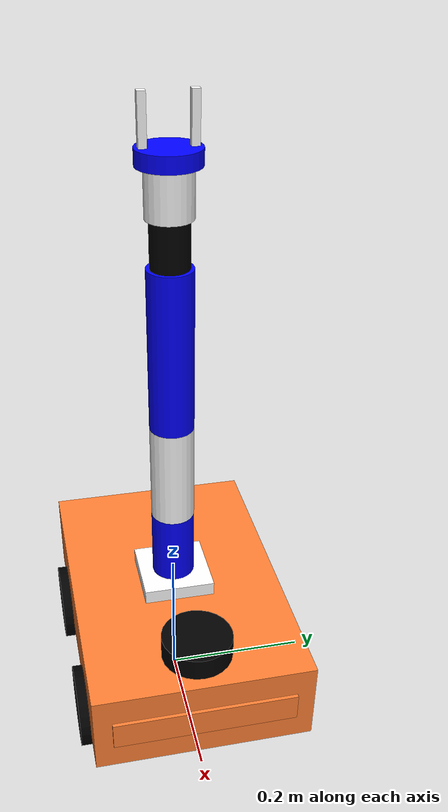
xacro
<robot name="dakebot" xmlns:xacro="http://www.ros.org/wiki/xacro">
  <xacro:include filename="robot_base.urdf.xacro"/>
  <xacro:include filename="robot_move.urdf.xacro"/>

  <xacro:include filename="$(find marm_description)/urdf/arm.xacro"/>

  <joint name="arm2base" type="fixed">
    <origin xyz="0.0 0.0 ${robot_base_link_higth / 2}" rpy="0.0 0.0 0.0"/>
    <parent link="robot_base_link"/>
    <child link="base_link"/>
    <axis xyz="0.0 0.0 0.0"/>
    <limit lower="0.0" upper="0.0" effort="0.0" velocity="0.0"/>
  </joint>

  <gazebo reference="camera">
    <material>Gazebo/Grey</material>
    <sensor type="camera" name="camera1">
      <update_rate>30.0</update_rate>
      <camera name="head">
        <horizontal_fov>1.3962634</horizontal_fov>
        <image>
          <width>800</width>
          <height>800</height>
          <format>R8G8B8</format>
        </image>
        <clip>
          <near>0.02</near>
          <far>300</far>
        </clip>
      </camera>
      <plugin name="camera_controller" filename="libgazebo_ros_camera.so">
        <alwaysOn>true</alwaysOn>
        <updateRate>0.0</updateRate>
        <cameraName>skid_steer_bot/camera1</cameraName>
        <imageTopicName>image_raw</imageTopicName>
        <cameraInfoTopicName>camera_info</cameraInfoTopicName>
        <frameName>camera</frameName>
        <hackBaseline>0.07</hackBaseline>
        <distortionK1>0.0</distortionK1>
        <distortionK2>0.0</distortionK2>
        <distortionK3>0.0</distortionK3>
        <distortionT1>0.0</distortionT1>
        <distortionT2>0.0</distortionT2>
      </plugin>
    </sensor>
  </gazebo>

  <gazebo reference="hokuyo">
    <sensor type="ray" name="head_hokuyo_sensor">
      <pose>0 0 0 0 0 0</pose>
      <visualize>false</visualize>
      <update_rate>40</update_rate>
      <ray>
        <scan>
          <horizontal>
            <samples>720</samples>
            <resolution>1</resolution>
            <min_angle>-1.570796</min_angle>
            <max_angle>1.570796</max_angle>
          </horizontal>
        </scan>
        <range>
          <min>0.10</min>
          <max>30.0</max>
          <resolution>0.01</resolution>
        </range>
        <noise>
          <type>gaussian</type>
          <mean>0.0</mean>
          <stddev>0.01</stddev>
        </noise>
      </ray>
      <plugin name="gazebo_ros_head_hokuyo_controller" filename="libgazebo_ros_laser.so">
        <topicName>/skid_steer_bot/laser/scan</topicName>
        <frameName>hokuyo</frameName>
      </plugin>
    </sensor>
  </gazebo>

</robot>

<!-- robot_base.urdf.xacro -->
<robot name="robot_base" xmlns:xacro="http://www.ros.org/wiki/xacro">

    <xacro:property name="PI" value="3.141"/>

    <material name="black">
        <color rgba="0.0 0.0 0.0 1.0" />
    </material>

    <xacro:property name="base_footprint_radius" value="0.001" />
    <xacro:property name="robot_base_link_length" value="0.448" />
    <xacro:property name="robot_base_link_width" value="0.300" />
    <xacro:property name="robot_base_link_higth" value="0.120" />
    <xacro:property name="robot_base_link_mass" value="5" />
    <xacro:property name="earth_space" value="0.056" />
    <xacro:property name="wheel_radius" value="0.056" />
    <xacro:property name="wheel_length" value="0.028" />
    <xacro:property name="wheel_mass" value="2" />

    <xacro:macro name="Box_inertial_matrix" params="m l w h">
       <inertial>
               <mass value="${m}" />
               <inertia ixx="${m*(h*h + l*l)/12}" ixy = "0" ixz = "0"
                   iyy="${m*(w*w + l*l)/12}" iyz= "0"
                   izz="${m*(w*w + h*h)/12}" />
       </inertial>
    </xacro:macro>

    <xacro:macro name="cylinder_inertial_matrix" params="m r h">
        <inertial>
            <mass value="${m}" />
            <inertia ixx="${m*(3*r*r+h*h)/12}" ixy = "0" ixz = "0"
                iyy="${m*(3*r*r+h*h)/12}" iyz = "0"
                izz="${m*r*r/2}" />
        </inertial>
    </xacro:macro>

    <!--base_footprint_link-->
    <link name="base_footprint">
      <visual>
        <geometry>
          <sphere radius="${base_footprint_radius}" />
        </geometry>
      </visual>
    </link>
    <!--robot_base_link-->
    <link name="robot_base_link">
      <visual>
        <geometry>
          <box size="${robot_base_link_length} ${robot_base_link_width} ${robot_base_link_higth}"/>
        </geometry>
        <origin xyz="0 0 0" rpy="0 0 0" />
        <material name="yellow">
          <color rgba="1.0 0.5 0.2 1.0" />
        </material>
      </visual>

      <collision>
        <geometry>
          <box size="${robot_base_link_length} ${robot_base_link_width} ${robot_base_link_higth}"/>
        </geometry>
        <origin xyz="0 0 0" rpy="0 0 0" />
      </collision>

      <xacro:Box_inertial_matrix m="${robot_base_link_mass}" l="${robot_base_link_length}" w="${robot_base_link_width}" h="${robot_base_link_higth}" />
    </link>

    <gazebo reference="robot_base_link">
        <material>Gazebo/Yellow</material>
    </gazebo>
    <!--base_link joint-->
    <joint name="link2footprint" type="fixed">
      <parent link="base_footprint" />
      <child link="robot_base_link" />
      <origin xyz="0 0 ${earth_space + robot_base_link_higth / 2 }" />
    </joint>

    <!--wheels_link-->
    <xacro:macro name="add_front_wheels" params="name flag">

      <link name="${name}_front_wheel">
        <visual>
          <geometry>
            <cylinder radius="${wheel_radius}" length="${wheel_length}" />
          </geometry>
          <origin xyz="0.0 0.0 0.0" rpy="${PI / 2} 0.0 0.0" />
          <material name="black" />
        </visual>

        <collision>
          <geometry>
            <cylinder radius="${wheel_radius}" length="${wheel_length}" />
          </geometry>
          <surface>
            <friction>
              <fdir1>1 0 0</fdir1>
              <kp>1000000.0</kp> <!-- kp and kd for rubber -->
              <kd>100.0</kd>
              <mu>1</mu>
              <mu2>1</mu2>
              <slip1>0.5</slip1>
              <slip2>0</slip2>
            </friction>
          </surface>
          <origin xyz="0.0 0.0 0.0" rpy="${PI / 2} 0.0 0.0" />
        </collision>

        <xacro:cylinder_inertial_matrix m="${wheel_mass}" r="${wheel_radius}" h="${wheel_length}" />
      </link>

      <gazebo reference="${name}_front_wheel">
        <material>Gazebo/Red</material>
      </gazebo>

      <!--wheels_joint-->
      <joint name="${name}_front_wheel2robot_base_link" type="continuous">
        <parent link="robot_base_link" />
        <child link="${name}_front_wheel" />
        <origin xyz="${robot_base_link_length / 4} ${flag * robot_base_link_width / 2} ${-1 * robot_base_link_higth / 2}" />
        <axis xyz="0 1 0" />
      </joint>
    </xacro:macro>

    <xacro:macro name="add_rear_wheels" params="name flag">

      <link name="${name}_rear_wheel">
        <visual>
          <geometry>
            <cylinder radius="${wheel_radius}" length="${wheel_length}" />
          </geometry>
          <origin xyz="0.0 0.0 0.0" rpy="${PI / 2} 0.0 0.0" />
          <material name="black" />
        </visual>

        <collision>
          <geometry>
            <cylinder radius="${wheel_radius}" length="${wheel_length}" />
          </geometry>
          <surface>
            <friction>
              <fdir1>1 0 0</fdir1>
              <kp>1000000.0</kp> <!-- kp and kd for rubber -->
              <kd>100.0</kd>
              <mu>1</mu>
              <mu2>1</mu2>
              <slip1>0.5</slip1>
              <slip2>0</slip2>
            </friction>
          </surface>
          <origin xyz="0.0 0.0 0.0" rpy="${PI / 2} 0.0 0.0" />
        </collision>

        <xacro:cylinder_inertial_matrix m="${wheel_mass}" r="${wheel_radius}" h="${wheel_length}" />
      </link>

      <gazebo reference="${name}_rear_wheel">
        <material>Gazebo/Red</material>
      </gazebo>

      <!--wheels_joint-->
      <joint name="${name}_rear_wheel2robot_base_link" type="continuous">
        <parent link="robot_base_link" />
        <child link="${name}_rear_wheel" />
        <origin xyz="${-1 * robot_base_link_length / 4} ${flag * robot_base_link_width / 2} ${-1 * robot_base_link_higth / 2}" />
        <axis xyz="0 1 0" />
      </joint>
    </xacro:macro>

    <xacro:add_front_wheels name="left" flag="1" />
    <xacro:add_front_wheels name="right" flag="-1" />
    <xacro:add_rear_wheels name="left" flag="1" />
    <xacro:add_rear_wheels name="right" flag="-1" />

    <link name="camera">
      <visual>
        <origin xyz="0.0 0.0 0.0" rpy="0.0 0.0 0.0"/>
        <geometry>
          <box size="0.01 0.25 0.04"/>
        </geometry>
        <material name="yellow">
          <color rgba="1.0 0.5 0.2 1.0" />
        </material>
      </visual>
      <collision>
        <origin xyz="0.0 0.0 0.0" rpy="0.0 0.0 0.0"/>
        <geometry>
          <box size="0.01 0.25 0.04"/>
        </geometry>
      </collision>
      <xacro:Box_inertial_matrix m="1.0" l="0.01" w="0.25" h="0.04" />
    </link>
    <joint name="camera2base" type="fixed">
      <origin xyz="0.224 0.0 0.0" rpy="0.0 0.0 0.0"/>
      <parent link="robot_base_link"/>
      <child link="camera"/>
      <axis xyz="0.0 0.0 0.0"/>
      <limit lower="0.0" upper="0.0" effort="0.0" velocity="0.0"/>
    </joint>

    <link name="hokuyo">
      <visual>
        <origin xyz="0.0 0.0 0.0" rpy="0.0 0.0 0.0"/>
        <geometry>
          <cylinder radius="0.048" length="0.032"/>
        </geometry>
        <material name="black" />
      </visual>
      <collision>
        <origin xyz="0.0 0.0 0.0" rpy="0.0 0.0 0.0"/>
        <geometry>
          <cylinder radius="0.048" length="0.032"/>
        </geometry>
      </collision>
      <xacro:cylinder_inertial_matrix m="1.0" r="0.048" h="0.032" />
    </link>
    <joint name="hokuyo2base" type="fixed">
      <origin xyz="0.164 0.0 0.08" rpy="0.0 0.0 0.0"/>
      <parent link="robot_base_link"/>
      <child link="hokuyo"/>
      <axis xyz="0.0 0.0 0.0"/>
      <limit lower="0.0" upper="0.0" effort="0.0" velocity="0.0"/>
    </joint>

</robot>

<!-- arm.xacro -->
<robot name="arm" xmlns:xacro="http://ros.org/wiki/xacro">

    <!-- Defining the colors used in this robot -->
    <material name="Black">
        <color rgba="0 0 0 1"/>
    </material>

    <material name="White">
        <color rgba="1 1 1 1"/>
    </material>

    <material name="Blue">
        <color rgba="0 0 1 1"/>
    </material>

    <material name="Red">
        <color rgba="1 0 0 1"/>
    </material>

    <!-- Constants -->
    <xacro:property name="M_PI" value="3.14159"/>

    <!-- link1 properties -->
    <xacro:property name="link1_width" value="0.03" />
    <xacro:property name="link1_len" value="0.10" />

    <!-- link2 properties -->
    <xacro:property name="link2_width" value="0.03" />
    <xacro:property name="link2_len" value="0.14" />

    <!-- link3 properties -->
    <xacro:property name="link3_width" value="0.03" />
    <xacro:property name="link3_len" value="0.22" />

    <!-- link4 properties -->
    <xacro:property name="link4_width" value="0.025" />
    <xacro:property name="link4_len" value="0.06" />

    <!-- link5 properties -->
    <xacro:property name="link5_width" value="0.03" />
    <xacro:property name="link5_len" value="0.06" />

    <!-- link6 properties -->
    <xacro:property name="link6_width" value="0.04" />
    <xacro:property name="link6_len" value="0.02" />

    <!-- Left gripper -->
    <xacro:property name="left_gripper_len" value="0.08" />
    <xacro:property name="left_gripper_width" value="0.01" />
    <xacro:property name="left_gripper_height" value="0.01" />

    <!-- Right gripper -->
    <xacro:property name="right_gripper_len" value="0.08" />
    <xacro:property name="right_gripper_width" value="0.01" />
    <xacro:property name="right_gripper_height" value="0.01" />

    <!-- Gripper frame -->
    <xacro:property name="grasp_frame_radius" value="0.001" />

    <!-- Inertial matrix -->
    <xacro:macro name="inertial_matrix" params="mass">
        <inertial>
            <mass value="${mass}" />
            <inertia ixx="1.0" ixy="0.0" ixz="0.0" iyy="0.5" iyz="0.0" izz="1.0" />
        </inertial>
    </xacro:macro>
    <xacro:macro name="Box_inertial_matrix" params="m l w h">
       <inertial>
               <mass value="${m}" />
               <inertia ixx="${m*(h*h + l*l)/12}" ixy = "0" ixz = "0"
                   iyy="${m*(w*w + l*l)/12}" iyz= "0"
                   izz="${m*(w*w + h*h)/12}" />
       </inertial>
    </xacro:macro>
    <!-- ///////////////////////////////////////   bottom_joint   ////////////////////////////////////////// -->
    <joint name="bottom_joint" type="fixed">
        <origin xyz="0 0 0" rpy="0 0 0" />
        <parent link="base_link"/>
        <child link="bottom_link"/>
    </joint>
    <link name="bottom_link">
        <visual>
              <origin xyz=" 0 0 -0.02"  rpy="0 0 0"/>
                  <geometry>
                       <box size="0.1 0.1 0.01" />
                  </geometry>
              <material name="Black" />
        </visual>
        <collision>
            <origin xyz=" 0 0 -0.02"  rpy="0 0 0"/>
            <geometry>
                <box size="0.1 0.1 0.01" />
            </geometry>
        </collision>
        <xacro:inertial_matrix mass="0.1"/>
    </link>

    <!-- /////////////////////////////////////   BASE LINK    ////////////////////////////////////////////// -->
    <link name="base_link">
        <visual>
            <origin xyz="0 0 0" rpy="0 0 0" />
            <geometry>
                <box size="0.1 0.1 0.04" />
            </geometry>
            <material name="White" />
        </visual>
        <collision>
            <origin xyz="0 0 0" rpy="0 0 0" />
            <geometry>
                <box size="0.1 0.1 0.04" />
            </geometry>
        </collision>
    </link>

    <joint name="joint1" type="revolute">
        <parent link="base_link"/>
        <child link="link1"/>
        <origin xyz="0 0 0.02" rpy="0 ${M_PI/2} 0" />
        <axis xyz="-1 0 0" />
        <limit effort="300" velocity="1" lower="-2.96" upper="2.96"/>
        <dynamics damping="50" friction="1"/>
    </joint>

    <!-- /////////////////////////////////////   LINK1  ////////////////////////////////////////////// -->
    <link name="link1" >
        <visual>
            <origin xyz="-${link1_len/2} 0 0" rpy="0 ${M_PI/2} 0" />
            <geometry>
                <cylinder radius="${link1_width}" length="${link1_len}"/>
            </geometry>
            <material name="Blue" />
        </visual>
        <collision>
            <origin xyz="-${link1_len/2} 0 0" rpy="0 ${M_PI/2} 0" />
            <geometry>
                <cylinder radius="${link1_width}" length="${link1_len}"/>
            </geometry>
        </collision>
        <xacro:inertial_matrix mass="0.1"/>
    </link>

    <joint name="joint2" type="revolute">
        <parent link="link1"/>
        <child link="link2"/>
        <origin xyz="-${link1_len} 0 0.0" rpy="-${M_PI/2} 0 ${M_PI/2}" />
        <axis xyz="1 0 0" />
        <limit effort="300" velocity="1" lower="-2.35" upper="2.35" />
        <dynamics damping="50" friction="1"/>
    </joint>

    <!-- ///////////////////////////////////////   LINK2  ////////////////////////////////////////////// -->
    <link name="link2" >
        <visual>
            <origin xyz="0 0 ${link2_len/2}" rpy="0 0 0" />
            <geometry>
                <cylinder radius="${link2_width}" length="${link2_len}"/>
            </geometry>
            <material name="White" />
        </visual>

        <collision>
            <origin xyz="0 0 ${link2_len/2}" rpy="0 0 0" />
            <geometry>
                <cylinder radius="${link2_width}" length="${link2_len}"/>
            </geometry>
        </collision>
        <xacro:inertial_matrix mass="0.1"/>
    </link>

    <joint name="joint3" type="revolute">
        <parent link="link2"/>
        <child link="link3"/>
        <origin xyz="0 0 ${link2_len}" rpy="0 ${M_PI} 0" />
        <axis xyz="-1 0 0" />
        <limit effort="300" velocity="1" lower="-2.62" upper="2.62" />
        <dynamics damping="50" friction="1"/>
    </joint>

    <!-- /////////////////////////////////   LINK3  ///////////////////////////////////////////////////// -->
    <link name="link3" >
        <visual>
            <origin xyz="0 0 -${link3_len/2}" rpy="0 0 0" />
            <geometry>
                <cylinder radius="${link3_width}" length="${link3_len}"/>
            </geometry>
            <material name="Blue" />
        </visual>
        <collision>
            <origin xyz="0 0 -${link3_len/2}" rpy="0 0 0" />
            <geometry>
                <cylinder radius="${link3_width}" length="${link3_len}"/>
            </geometry>
        </collision>
        <xacro:inertial_matrix mass="0.1"/>
    </link>

    <joint name="joint4" type="revolute">
        <parent link="link3"/>
        <child link="link4"/>
        <origin xyz="0.0 0.0 -${link3_len}" rpy="0 ${M_PI/2} ${M_PI}" />
        <axis xyz="1 0 0" />
        <limit effort="300" velocity="1" lower="-2.62" upper="2.62" />
        <dynamics damping="50" friction="1"/>
    </joint>

    <!-- ///////////////////////////////////   LINK4  //////////////////////////////////////////////// -->
    <link name="link4" >
        <visual>
            <origin xyz="${link4_len/2} 0 0" rpy="0 ${M_PI/2} 0" />
            <geometry>
                <cylinder radius="${link4_width}" length="${link4_len}"/>
            </geometry>
            <material name="Black" />
        </visual>
        <collision>
            <origin xyz="${link4_len/2} 0 0" rpy="0 ${M_PI/2} 0" />
            <geometry>
                <cylinder radius="${link4_width}" length="${link4_len}"/>
            </geometry>
        </collision>
        <xacro:inertial_matrix mass="0.1"/>
    </link>

    <joint name="joint5" type="revolute">
        <parent link="link4"/>
        <child link="link5"/>
        <origin xyz="${link4_len} 0.0 0.0" rpy="0 ${M_PI/2} 0" />
        <axis xyz="1 0 0" />
        <limit effort="300" velocity="1" lower="-2.62" upper="2.62" />
        <dynamics damping="50" friction="1"/>
    </joint>

    <!-- //////////////////////////////////   LINK5  ///////////////////////////////////////////////// -->
    <link name="link5">
        <visual>
            <origin xyz="0 0 ${link4_len/2}" rpy="0 0 0" />
            <geometry>
                <cylinder radius="${link5_width}" length="${link5_len}"/>
            </geometry>
            <material name="White" />
        </visual>
        <collision>
            <origin xyz="0 0 ${link4_len/2} " rpy="0 0 0" />
            <geometry>
                <cylinder radius="${link5_width}" length="${link5_len}"/>
            </geometry>
        </collision>
        <xacro:inertial_matrix mass="0.1"/>
    </link>

    <joint name="joint6" type="revolute">
        <parent link="link5"/>
        <child link="link6"/>
        <origin xyz="0 0 ${link4_len}" rpy="${1.5*M_PI} -${M_PI/2} 0" />
        <axis xyz="1 0 0" />
        <limit effort="300" velocity="1" lower="-6.28" upper="6.28" />
        <dynamics damping="50" friction="1"/>
    </joint>

    <!-- ////////////////////////////////   LINK6  ///////////////////////////////////////////////// -->
    <link name="link6">
        <visual>
            <origin xyz="${link6_len/2} 0 0 " rpy="0 ${M_PI/2} 0" />
            <geometry>
                <cylinder radius="${link6_width}" length="${link6_len}"/>
            </geometry>
            <material name="Blue" />
        </visual>
        <collision>
            <origin xyz="${link6_len/2} 0 0" rpy="0 ${M_PI/2} 0" />
            <geometry>
                <cylinder radius="${link6_width}" length="${link6_len}"/>
            </geometry>
        </collision>
        <xacro:inertial_matrix mass="0.1"/>
    </link>

    <joint name="finger_joint1" type="prismatic">
        <parent link="link6"/>
        <child link="gripper_finger_link1"/>
        <origin xyz="0.0 0 0" />
        <axis xyz="0 1 0" />
        <limit effort="100" lower="0" upper="0.06" velocity="1.0"/>
        <dynamics damping="50" friction="1"/>
    </joint>

    <!-- //////////////////////////////////////   gripper   ////////////////////////////////////////////// -->
    <!-- LEFT GRIPPER AFT LINK -->
    <link name="gripper_finger_link1">
        <visual>
            <origin xyz="0.04 -0.03 0"/>
            <geometry>
                <box size="${left_gripper_len} ${left_gripper_width} ${left_gripper_height}" />
            </geometry>
            <material name="White" />
        </visual>
        <collision>
            <origin xyz="0.04 -0.03 0" />
            <geometry>
                <box size="${left_gripper_len} ${left_gripper_width} ${left_gripper_height}" />
            </geometry>
        </collision>
        <xacro:Box_inertial_matrix m="0.05" l="${left_gripper_len}" w="${left_gripper_width}" h="${left_gripper_height}" />
    </link>

    <joint name="finger_joint2" type="fixed">
        <parent link="link6"/>
        <child link="gripper_finger_link2"/>
        <origin xyz="0.0 0 0" />
    </joint>

    <!-- RIGHT GRIPPER AFT LINK -->
    <link name="gripper_finger_link2">
        <visual>
            <origin xyz="0.04 0.03 0"/>
            <geometry>
                <box size="${right_gripper_len} ${right_gripper_width} ${right_gripper_height}" />
            </geometry>
            <material name="White" />
        </visual>
        <collision>
            <origin xyz="0.04 0.03 0" />
            <geometry>
                <box size="${right_gripper_len} ${right_gripper_width} ${right_gripper_height}" />
            </geometry>
        </collision>
        <xacro:Box_inertial_matrix m="0.05" l="${left_gripper_len}" w="${left_gripper_width}" h="${left_gripper_height}" />
    </link>

    <!-- Grasping frame -->
    <link name="grasping_frame"/>

    <joint name="grasping_frame_joint" type="fixed">
      <parent link="link6"/>
      <child link="grasping_frame"/>
      <origin xyz="0.08 0 0" rpy="0 0 0"/>
    </joint>

    <!-- /////////////////////////////////   Gazebo   ////////////////////////////////////// -->
    <gazebo reference="base_link">
        <material>Gazebo/White</material>
    </gazebo>
    <gazebo reference="link1">
        <material>Gazebo/Blue</material>
    </gazebo>
    <gazebo reference="link2">
        <material>Gazebo/White</material>
    </gazebo>
    <gazebo reference="link3">
        <material>Gazebo/Blue</material>
    </gazebo>
    <gazebo reference="link4">
        <material>Gazebo/Black</material>
    </gazebo>
    <gazebo reference="link5">
        <material>Gazebo/White</material>
    </gazebo>
    <gazebo reference="link6">
        <material>Gazebo/Blue</material>
    </gazebo>
    <gazebo reference="gripper_finger_link1">
        <material>Gazebo/White</material>
    </gazebo>
    <gazebo reference="gripper_finger_link2">
        <material>Gazebo/White</material>
    </gazebo>
    <gazebo reference="finger_1_link">
      <mu1>2000.0</mu1>
      <mu2>1000.0</mu2>
      <kp>10000000.0</kp>
      <kd>1.0</kd>
    </gazebo>
    <gazebo reference="finger_2_link">
      <mu1>2000.0</mu1>
      <mu2>1000.0</mu2>
      <kp>10000000.0</kp>
      <kd>1.0</kd>
    </gazebo>

    <!-- Transmissions for ROS Control -->
    <xacro:macro name="transmission_block" params="joint_name">
        <transmission name="tran1">
            <type>transmission_interface/SimpleTransmission</type>
            <joint name="${joint_name}">
                <hardwareInterface>hardware_interface/PositionJointInterface</hardwareInterface>
            </joint>
            <actuator name="motor1">
                <hardwareInterface>hardware_interface/PositionJointInterface</hardwareInterface>
                <mechanicalReduction>1</mechanicalReduction>
            </actuator>
        </transmission>
    </xacro:macro>

    <xacro:transmission_block joint_name="joint1"/>
    <xacro:transmission_block joint_name="joint2"/>
    <xacro:transmission_block joint_name="joint3"/>
    <xacro:transmission_block joint_name="joint4"/>
    <xacro:transmission_block joint_name="joint5"/>
    <xacro:transmission_block joint_name="joint6"/>
    <xacro:transmission_block joint_name="finger_joint1"/>

    <!-- ros_control plugin -->
    <gazebo>
        <plugin name="gazebo_ros_control" filename="libgazebo_ros_control.so">
            <robotNamespace>/</robotNamespace>
        </plugin>
    </gazebo>

</robot>
